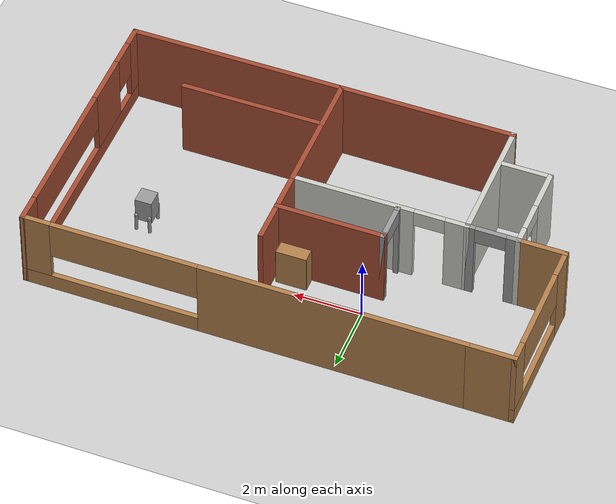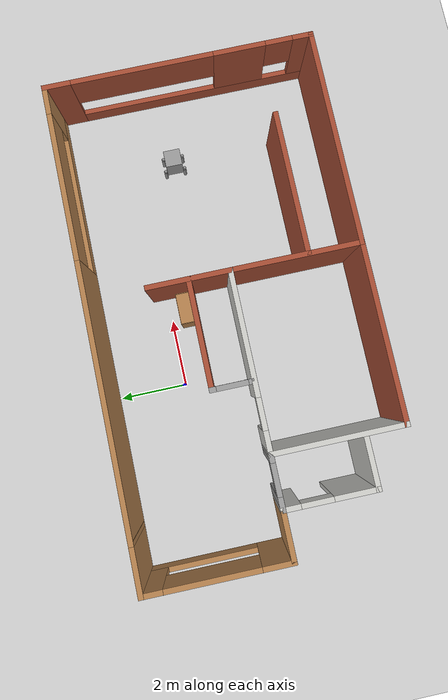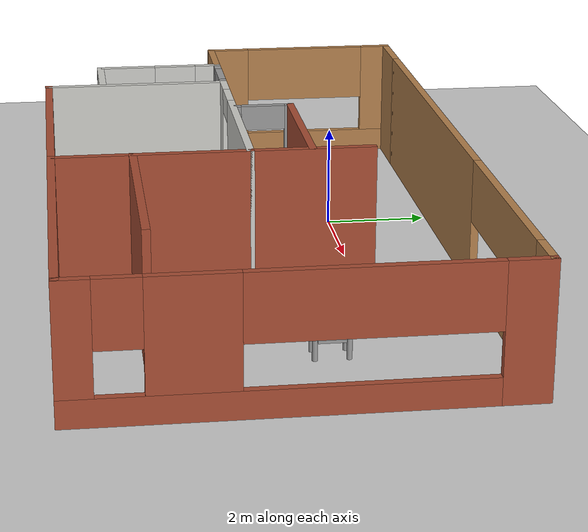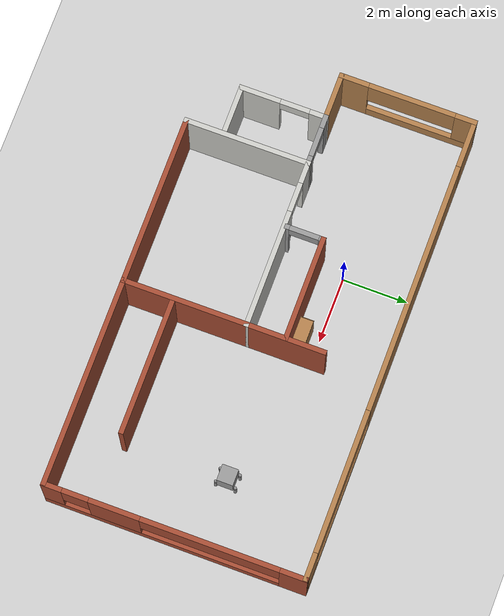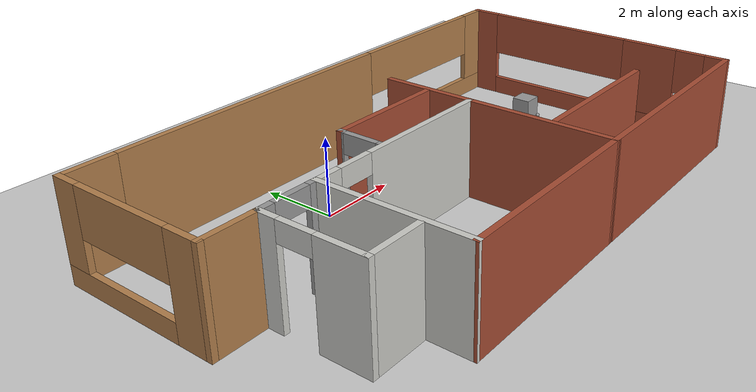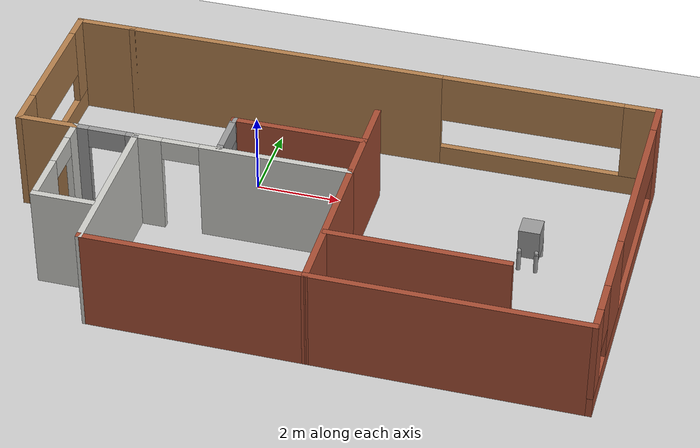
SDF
<sdf version="1.6">
 <world name="default">
  <model name="ground_plane">
   <static>1</static>
   <link name="link">
    <collision name="collision">
     <geometry><plane><normal>0 0 1</normal><size>100 100</size></plane></geometry>
     <surface><friction><ode><mu>100</mu><mu2>50</mu2></ode></friction></surface>
    </collision>
    <visual name="visual">
     <cast_shadows>0</cast_shadows>
     <geometry><plane><normal>0 0 1</normal><size>100 100</size></plane></geometry>
     <material>
      <script><uri>file://media/materials/scripts/gazebo.material</uri><name>Gazebo/Grey</name></script>
     </material>
    </visual>
   </link>
  </model>
  <model name="myplace">
   <pose>1.99043 -1.78813 0 0 -0 0</pose>
   <link name="Wall_56">
    <pose>-5.02365 -0.175493 0 0 -0 3.14159</pose>
    <visual name="Wall_56_Visual_0">
     <pose>-0.660344 0 1.25 0 -0 0</pose>
     <geometry><box><size>0.30723 0.15 2.5</size></box></geometry>
     <material>
      <script><uri>file://media/materials/scripts/gazebo.material</uri><name>Gazebo/Grey</name></script>
      <ambient>1 1 1 1</ambient>
     </material>
     <meta><layer>0</layer></meta>
    </visual>
    <collision name="Wall_56_Collision_0">
     <geometry><box><size>0.30723 0.15 2.5</size></box></geometry>
     <pose>-0.660344 0 1.25 0 -0 0</pose>
    </collision>
    <visual name="Wall_56_Visual_1">
     <pose>0.603615 0 1.25 0 -0 0</pose>
     <geometry><box><size>0.420688 0.15 2.5</size></box></geometry>
     <material>
      <script><uri>file://media/materials/scripts/gazebo.material</uri><name>Gazebo/Grey</name></script>
      <ambient>1 1 1 1</ambient>
     </material>
     <meta><layer>0</layer></meta>
    </visual>
    <collision name="Wall_56_Collision_1">
     <geometry><box><size>0.420688 0.15 2.5</size></box></geometry>
     <pose>0.603615 0 1.25 0 -0 0</pose>
    </collision>
    <visual name="Wall_56_Visual_2">
     <pose>-0.056729 0 2.25 0 -0 0</pose>
     <geometry><box><size>0.9 0.15 0.5</size></box></geometry>
     <material>
      <script><uri>file://media/materials/scripts/gazebo.material</uri><name>Gazebo/Grey</name></script>
      <ambient>1 1 1 1</ambient>
     </material>
     <meta><layer>0</layer></meta>
    </visual>
    <collision name="Wall_56_Collision_2">
     <geometry><box><size>0.9 0.15 0.5</size></box></geometry>
     <pose>-0.056729 0 2.25 0 -0 0</pose>
    </collision>
   </link>
   <link name="Wall_58">
    <pose>0.66434 3.92507 0 0 -0 8.8e-05</pose>
    <visual name="Wall_58_Visual_0">
     <pose>-2.59963 0 1.25 0 -0 0</pose>
     <geometry><box><size>7.80465 0.15 2.5</size></box></geometry>
     <material>
      <script><uri>file://media/materials/scripts/gazebo.material</uri><name>Gazebo/Wood</name></script>
      <ambient>1 1 1 1</ambient>
     </material>
     <meta><layer>0</layer></meta>
    </visual>
    <collision name="Wall_58_Collision_0">
     <geometry><box><size>7.80465 0.15 2.5</size></box></geometry>
     <pose>-2.59963 0 1.25 0 -0 0</pose>
    </collision>
    <visual name="Wall_58_Visual_1">
     <pose>3.90232 0 0.25 0 -0 0</pose>
     <geometry><box><size>5.19925 0.15 0.5</size></box></geometry>
     <material>
      <script><uri>file://media/materials/scripts/gazebo.material</uri><name>Gazebo/Wood</name></script>
      <ambient>1 1 1 1</ambient>
     </material>
     <meta><layer>0</layer></meta>
    </visual>
    <collision name="Wall_58_Collision_1">
     <geometry><box><size>5.19925 0.15 0.5</size></box></geometry>
     <pose>3.90232 0 0.25 0 -0 0</pose>
    </collision>
    <visual name="Wall_58_Visual_2">
     <pose>6.07184 0 1.5 0 -0 0</pose>
     <geometry><box><size>0.860213 0.15 2</size></box></geometry>
     <material>
      <script><uri>file://media/materials/scripts/gazebo.material</uri><name>Gazebo/Wood</name></script>
      <ambient>1 1 1 1</ambient>
     </material>
     <meta><layer>0</layer></meta>
    </visual>
    <collision name="Wall_58_Collision_2">
     <geometry><box><size>0.860213 0.15 2</size></box></geometry>
     <pose>6.07184 0 1.5 0 -0 0</pose>
    </collision>
    <visual name="Wall_58_Visual_3">
     <pose>3.47222 0 1.9 0 -0 0</pose>
     <geometry><box><size>4.33904 0.15 1.2</size></box></geometry>
     <material>
      <script><uri>file://media/materials/scripts/gazebo.material</uri><name>Gazebo/Wood</name></script>
      <ambient>1 1 1 1</ambient>
     </material>
     <meta><layer>0</layer></meta>
    </visual>
    <collision name="Wall_58_Collision_3">
     <geometry><box><size>4.33904 0.15 1.2</size></box></geometry>
     <pose>3.47222 0 1.9 0 -0 0</pose>
    </collision>
   </link>
   <link name="Wall_59">
    <pose>7.11261 0.000633 0 0 0 -1.5708</pose>
    <visual name="Wall_59_Visual_0">
     <pose>-3.58058 0 1.25 0 -0 0</pose>
     <geometry><box><size>0.838846 0.15 2.5</size></box></geometry>
     <material>
      <script><uri>file://media/materials/scripts/gazebo.material</uri><name>Gazebo/Bricks</name></script>
      <ambient>1 1 1 1</ambient>
     </material>
     <meta><layer>0</layer></meta>
    </visual>
    <collision name="Wall_59_Collision_0">
     <geometry><box><size>0.838846 0.15 2.5</size></box></geometry>
     <pose>-3.58058 0 1.25 0 -0 0</pose>
    </collision>
    <visual name="Wall_59_Visual_1">
     <pose>0.419423 0 0.25 0 -0 0</pose>
     <geometry><box><size>7.16115 0.15 0.5</size></box></geometry>
     <material>
      <script><uri>file://media/materials/scripts/gazebo.material</uri><name>Gazebo/Bricks</name></script>
      <ambient>1 1 1 1</ambient>
     </material>
     <meta><layer>0</layer></meta>
    </visual>
    <collision name="Wall_59_Collision_1">
     <geometry><box><size>7.16115 0.15 0.5</size></box></geometry>
     <pose>0.419423 0 0.25 0 -0 0</pose>
    </collision>
    <visual name="Wall_59_Visual_2">
     <pose>1.80126 0 1.5 0 -0 0</pose>
     <geometry><box><size>1.54516 0.15 2</size></box></geometry>
     <material>
      <script><uri>file://media/materials/scripts/gazebo.material</uri><name>Gazebo/Bricks</name></script>
      <ambient>1 1 1 1</ambient>
     </material>
     <meta><layer>0</layer></meta>
    </visual>
    <collision name="Wall_59_Collision_2">
     <geometry><box><size>1.54516 0.15 2</size></box></geometry>
     <pose>1.80126 0 1.5 0 -0 0</pose>
    </collision>
    <visual name="Wall_59_Visual_3">
     <pose>3.68692 0 1.5 0 -0 0</pose>
     <geometry><box><size>0.62616 0.15 2</size></box></geometry>
     <material>
      <script><uri>file://media/materials/scripts/gazebo.material</uri><name>Gazebo/Bricks</name></script>
      <ambient>1 1 1 1</ambient>
     </material>
     <meta><layer>0</layer></meta>
    </visual>
    <collision name="Wall_59_Collision_3">
     <geometry><box><size>0.62616 0.15 2</size></box></geometry>
     <pose>3.68692 0 1.5 0 -0 0</pose>
    </collision>
    <visual name="Wall_59_Visual_4">
     <pose>-1.06624 0 1.9 0 -0 0</pose>
     <geometry><box><size>4.18983 0.15 1.2</size></box></geometry>
     <material>
      <script><uri>file://media/materials/scripts/gazebo.material</uri><name>Gazebo/Bricks</name></script>
      <ambient>1 1 1 1</ambient>
     </material>
     <meta><layer>0</layer></meta>
    </visual>
    <collision name="Wall_59_Collision_4">
     <geometry><box><size>4.18983 0.15 1.2</size></box></geometry>
     <pose>-1.06624 0 1.9 0 -0 0</pose>
    </collision>
    <visual name="Wall_59_Visual_5">
     <pose>2.97384 0 1.9 0 -0 0</pose>
     <geometry><box><size>0.8 0.15 1.2</size></box></geometry>
     <material>
      <script><uri>file://media/materials/scripts/gazebo.material</uri><name>Gazebo/Bricks</name></script>
      <ambient>1 1 1 1</ambient>
     </material>
     <meta><layer>0</layer></meta>
    </visual>
    <collision name="Wall_59_Collision_5">
     <geometry><box><size>0.8 0.15 1.2</size></box></geometry>
     <pose>2.97384 0 1.9 0 -0 0</pose>
    </collision>
   </link>
   <link name="Wall_60">
    <collision name="Wall_60_Collision">
     <geometry><box><size>6.41862 0.15 2.5</size></box></geometry>
     <pose>0 0 1.25 0 -0 0</pose>
    </collision>
    <visual name="Wall_60_Visual">
     <pose>0 0 1.25 0 -0 0</pose>
     <geometry><box><size>6.41862 0.15 2.5</size></box></geometry>
     <material>
      <script><uri>file://media/materials/scripts/gazebo.material</uri><name>Gazebo/Bricks</name></script>
      <ambient>1 1 1 1</ambient>
     </material>
     <meta><layer>0</layer></meta>
    </visual>
    <pose>3.95698 -3.92493 0 0 0 -3.14141</pose>
   </link>
   <link name="Wall_69">
    <pose>-1.73469 -0.175493 0 0 -0 0</pose>
    <visual name="Wall_69_Visual_0">
     <pose>-2.26885 0 1.25 0 -0 0</pose>
     <geometry><box><size>0.712304 0.15 2.5</size></box></geometry>
     <material>
      <script><uri>file://media/materials/scripts/gazebo.material</uri><name>Gazebo/CeilingTiled</name></script>
      <ambient>1 1 1 1</ambient>
     </material>
     <meta><layer>0</layer></meta>
    </visual>
    <collision name="Wall_69_Collision_0">
     <geometry><box><size>0.712304 0.15 2.5</size></box></geometry>
     <pose>-2.26885 0 1.25 0 -0 0</pose>
    </collision>
    <visual name="Wall_69_Visual_1">
     <pose>0.806152 0 1.25 0 -0 0</pose>
     <geometry><box><size>3.6377 0.15 2.5</size></box></geometry>
     <material>
      <script><uri>file://media/materials/scripts/gazebo.material</uri><name>Gazebo/CeilingTiled</name></script>
      <ambient>1 1 1 1</ambient>
     </material>
     <meta><layer>0</layer></meta>
    </visual>
    <collision name="Wall_69_Collision_1">
     <geometry><box><size>3.6377 0.15 2.5</size></box></geometry>
     <pose>0.806152 0 1.25 0 -0 0</pose>
    </collision>
    <visual name="Wall_69_Visual_2">
     <pose>-1.4627 0 2.25 0 -0 0</pose>
     <geometry><box><size>0.9 0.15 0.5</size></box></geometry>
     <material>
      <script><uri>file://media/materials/scripts/gazebo.material</uri><name>Gazebo/CeilingTiled</name></script>
      <ambient>1 1 1 1</ambient>
     </material>
     <meta><layer>0</layer></meta>
    </visual>
    <collision name="Wall_69_Collision_2">
     <geometry><box><size>0.9 0.15 0.5</size></box></geometry>
     <pose>-1.4627 0 2.25 0 -0 0</pose>
    </collision>
   </link>
   <link name="Wall_72">
    <collision name="Wall_72_Collision">
     <geometry><box><size>3.90001 0.15 2.5</size></box></geometry>
     <pose>0 0 1.25 0 -0 0</pose>
    </collision>
    <visual name="Wall_72_Visual">
     <pose>0 0 1.25 0 -0 0</pose>
     <geometry><box><size>3.90001 0.15 2.5</size></box></geometry>
     <material>
      <script><uri>file://media/materials/scripts/gazebo.material</uri><name>Gazebo/Bricks</name></script>
      <ambient>1 1 1 1</ambient>
     </material>
     <meta><layer>0</layer></meta>
    </visual>
    <pose>0.818989 -2.05049 0 0 0 -1.56883</pose>
   </link>
   <link name="Wall_74">
    <collision name="Wall_74_Collision">
     <geometry><box><size>5.25 0.15 2.5</size></box></geometry>
     <pose>0 0 1.25 0 -0 0</pose>
    </collision>
    <visual name="Wall_74_Visual">
     <pose>0 0 1.25 0 -0 0</pose>
     <geometry><box><size>5.25 0.15 2.5</size></box></geometry>
     <material>
      <script><uri>file://media/materials/scripts/gazebo.material</uri><name>Gazebo/Bricks</name></script>
      <ambient>1 1 1 1</ambient>
     </material>
     <meta><layer>0</layer></meta>
    </visual>
    <pose>-1.72733 -3.92549 0 0 -0 3.14159</pose>
   </link>
   <link name="Wall_75">
    <collision name="Wall_75_Collision">
     <geometry><box><size>3.90001 0.15 2.5</size></box></geometry>
     <pose>0 0 1.25 0 -0 0</pose>
    </collision>
    <visual name="Wall_75_Visual">
     <pose>0 0 1.25 0 -0 0</pose>
     <geometry><box><size>3.90001 0.15 2.5</size></box></geometry>
     <material>
      <script><uri>file://media/materials/scripts/gazebo.material</uri><name>Gazebo/CeilingTiled</name></script>
      <ambient>1 1 1 1</ambient>
     </material>
     <meta><layer>0</layer></meta>
    </visual>
    <pose>-4.28101 -2.05049 0 0 -0 1.57276</pose>
   </link>
   <link name="Wall_79">
    <collision name="Wall_79_Collision">
     <geometry><box><size>2.5 0.15 2.5</size></box></geometry>
     <pose>0 0 1.25 0 -0 0</pose>
    </collision>
    <visual name="Wall_79_Visual">
     <pose>0 0 1.25 0 -0 0</pose>
     <geometry><box><size>2.5 0.15 2.5</size></box></geometry>
     <material>
      <script><uri>file://media/materials/scripts/gazebo.material</uri><name>Gazebo/Bricks</name></script>
      <ambient>1 1 1 1</ambient>
     </material>
     <meta><layer>0</layer></meta>
    </visual>
    <pose>0.815308 0.999507 0 0 -0 1.5708</pose>
   </link>
   <link name="Wall_81">
    <collision name="Wall_81_Collision">
     <geometry><box><size>4.25 0.15 2.5</size></box></geometry>
     <pose>0 0 1.25 0 -0 0</pose>
    </collision>
    <visual name="Wall_81_Visual">
     <pose>0 0 1.25 0 -0 0</pose>
     <geometry><box><size>4.25 0.15 2.5</size></box></geometry>
     <material>
      <script><uri>file://media/materials/scripts/gazebo.material</uri><name>Gazebo/Bricks</name></script>
      <ambient>1 1 1 1</ambient>
     </material>
     <meta><layer>0</layer></meta>
    </visual>
    <pose>2.90335 -2.39757 0 0 -0 0</pose>
   </link>
   <link name="Wall_83">
    <collision name="Wall_83_Collision">
     <geometry><box><size>3.25 0.15 2.5</size></box></geometry>
     <pose>0 0 1.25 0 -0 0</pose>
    </collision>
    <visual name="Wall_83_Visual">
     <pose>0 0 1.25 0 -0 0</pose>
     <geometry><box><size>3.25 0.15 2.5</size></box></geometry>
     <material>
      <script><uri>file://media/materials/scripts/gazebo.material</uri><name>Gazebo/Bricks</name></script>
      <ambient>1 1 1 1</ambient>
     </material>
     <meta><layer>0</layer></meta>
    </visual>
    <pose>-0.739288 1.01357 0 0 -0 3.14159</pose>
   </link>
   <link name="Wall_84">
    <pose>-2.28929 0.463574 0 0 0 -1.5708</pose>
    <visual name="Wall_84_Visual_0">
     <pose>-0.524684 0 1.25 0 -0 0</pose>
     <geometry><box><size>0.200631 0.15 2.5</size></box></geometry>
     <material>
      <script><uri>file://media/materials/scripts/gazebo.material</uri><name>Gazebo/Grey</name></script>
      <ambient>1 1 1 1</ambient>
     </material>
     <meta><layer>0</layer></meta>
    </visual>
    <collision name="Wall_84_Collision_0">
     <geometry><box><size>0.200631 0.15 2.5</size></box></geometry>
     <pose>-0.524684 0 1.25 0 -0 0</pose>
    </collision>
    <visual name="Wall_84_Visual_1">
     <pose>0.550316 0 1.25 0 -0 0</pose>
     <geometry><box><size>0.149369 0.15 2.5</size></box></geometry>
     <material>
      <script><uri>file://media/materials/scripts/gazebo.material</uri><name>Gazebo/Grey</name></script>
      <ambient>1 1 1 1</ambient>
     </material>
     <meta><layer>0</layer></meta>
    </visual>
    <collision name="Wall_84_Collision_1">
     <geometry><box><size>0.149369 0.15 2.5</size></box></geometry>
     <pose>0.550316 0 1.25 0 -0 0</pose>
    </collision>
    <visual name="Wall_84_Visual_2">
     <pose>0.025631 0 2.25 0 -0 0</pose>
     <geometry><box><size>0.9 0.15 0.5</size></box></geometry>
     <material>
      <script><uri>file://media/materials/scripts/gazebo.material</uri><name>Gazebo/Grey</name></script>
      <ambient>1 1 1 1</ambient>
     </material>
     <meta><layer>0</layer></meta>
    </visual>
    <collision name="Wall_84_Collision_2">
     <geometry><box><size>0.9 0.15 0.5</size></box></geometry>
     <pose>0.025631 0 2.25 0 -0 0</pose>
    </collision>
   </link>
   <link name="Wall_86">
    <pose>-5.76261 -1.47549 0 0 0 -1.5708</pose>
    <visual name="Wall_86_Visual_0">
     <pose>-1.09105 0 1.25 0 -0 0</pose>
     <geometry><box><size>0.567901 0.15 2.5</size></box></geometry>
     <material>
      <script><uri>file://media/materials/scripts/gazebo.material</uri><name>Gazebo/CeilingTiled</name></script>
      <ambient>1 1 1 1</ambient>
     </material>
     <meta><layer>0</layer></meta>
    </visual>
    <collision name="Wall_86_Collision_0">
     <geometry><box><size>0.567901 0.15 2.5</size></box></geometry>
     <pose>-1.09105 0 1.25 0 -0 0</pose>
    </collision>
    <visual name="Wall_86_Visual_1">
     <pose>0.73395 0 1.25 0 -0 0</pose>
     <geometry><box><size>1.2821 0.15 2.5</size></box></geometry>
     <material>
      <script><uri>file://media/materials/scripts/gazebo.material</uri><name>Gazebo/CeilingTiled</name></script>
      <ambient>1 1 1 1</ambient>
     </material>
     <meta><layer>0</layer></meta>
    </visual>
    <collision name="Wall_86_Collision_1">
     <geometry><box><size>1.2821 0.15 2.5</size></box></geometry>
     <pose>0.73395 0 1.25 0 -0 0</pose>
    </collision>
    <visual name="Wall_86_Visual_2">
     <pose>-0.357099 0 2.25 0 -0 0</pose>
     <geometry><box><size>0.9 0.15 0.5</size></box></geometry>
     <material>
      <script><uri>file://media/materials/scripts/gazebo.material</uri><name>Gazebo/CeilingTiled</name></script>
      <ambient>1 1 1 1</ambient>
     </material>
     <meta><layer>0</layer></meta>
    </visual>
    <collision name="Wall_86_Collision_2">
     <geometry><box><size>0.9 0.15 0.5</size></box></geometry>
     <pose>-0.357099 0 2.25 0 -0 0</pose>
    </collision>
   </link>
   <link name="Wall_87">
    <collision name="Wall_87_Collision">
     <geometry><box><size>1.5 0.15 2.5</size></box></geometry>
     <pose>0 0 1.25 0 -0 0</pose>
    </collision>
    <visual name="Wall_87_Visual">
     <pose>0 0 1.25 0 -0 0</pose>
     <geometry><box><size>1.5 0.15 2.5</size></box></geometry>
     <material>
      <script><uri>file://media/materials/scripts/gazebo.material</uri><name>Gazebo/CeilingTiled</name></script>
      <ambient>1 1 1 1</ambient>
     </material>
     <meta><layer>0</layer></meta>
    </visual>
    <pose>-5.08761 -2.77549 0 0 -0 0</pose>
   </link>
   <link name="Wall_89">
    <collision name="Wall_89_Collision">
     <geometry><box><size>1.5 0.15 2.5</size></box></geometry>
     <pose>0 0 1.25 0 -0 0</pose>
    </collision>
    <visual name="Wall_89_Visual">
     <pose>0 0 1.25 0 -0 0</pose>
     <geometry><box><size>1.5 0.15 2.5</size></box></geometry>
     <material>
      <script><uri>file://media/materials/scripts/gazebo.material</uri><name>Gazebo/Wood</name></script>
      <ambient>1 1 1 1</ambient>
     </material>
     <meta><layer>0</layer></meta>
    </visual>
    <pose>-6.43761 -0.175493 0 0 -0 3.14159</pose>
   </link>
   <link name="Wall_90">
    <pose>-7.11261 1.87451 0 0 -0 1.5708</pose>
    <visual name="Wall_90_Visual_0">
     <pose>-1.66099 0 1.25 0 -0 0</pose>
     <geometry><box><size>0.928026 0.15 2.5</size></box></geometry>
     <material>
      <script><uri>file://media/materials/scripts/gazebo.material</uri><name>Gazebo/Wood</name></script>
      <ambient>1 1 1 1</ambient>
     </material>
     <meta><layer>0</layer></meta>
    </visual>
    <collision name="Wall_90_Collision_0">
     <geometry><box><size>0.928026 0.15 2.5</size></box></geometry>
     <pose>-1.66099 0 1.25 0 -0 0</pose>
    </collision>
    <visual name="Wall_90_Visual_1">
     <pose>0.464013 0 0.25 0 -0 0</pose>
     <geometry><box><size>3.32197 0.15 0.5</size></box></geometry>
     <material>
      <script><uri>file://media/materials/scripts/gazebo.material</uri><name>Gazebo/Wood</name></script>
      <ambient>1 1 1 1</ambient>
     </material>
     <meta><layer>0</layer></meta>
    </visual>
    <collision name="Wall_90_Collision_1">
     <geometry><box><size>3.32197 0.15 0.5</size></box></geometry>
     <pose>0.464013 0 0.25 0 -0 0</pose>
    </collision>
    <visual name="Wall_90_Visual_2">
     <pose>1.79142 0 1.5 0 -0 0</pose>
     <geometry><box><size>0.667162 0.15 2</size></box></geometry>
     <material>
      <script><uri>file://media/materials/scripts/gazebo.material</uri><name>Gazebo/Wood</name></script>
      <ambient>1 1 1 1</ambient>
     </material>
     <meta><layer>0</layer></meta>
    </visual>
    <collision name="Wall_90_Collision_2">
     <geometry><box><size>0.667162 0.15 2</size></box></geometry>
     <pose>1.79142 0 1.5 0 -0 0</pose>
    </collision>
    <visual name="Wall_90_Visual_3">
     <pose>0.130432 0 1.9 0 -0 0</pose>
     <geometry><box><size>2.65481 0.15 1.2</size></box></geometry>
     <material>
      <script><uri>file://media/materials/scripts/gazebo.material</uri><name>Gazebo/Wood</name></script>
      <ambient>1 1 1 1</ambient>
     </material>
     <meta><layer>0</layer></meta>
    </visual>
    <collision name="Wall_90_Collision_3">
     <geometry><box><size>2.65481 0.15 1.2</size></box></geometry>
     <pose>0.130432 0 1.9 0 -0 0</pose>
    </collision>
   </link>
   <link name="Wall_91">
    <collision name="Wall_91_Collision">
     <geometry><box><size>1.5 0.15 2.5</size></box></geometry>
     <pose>0 0 1.25 0 -0 0</pose>
    </collision>
    <visual name="Wall_91_Visual">
     <pose>0 0 1.25 0 -0 0</pose>
     <geometry><box><size>1.5 0.15 2.5</size></box></geometry>
     <material>
      <script><uri>file://media/materials/scripts/gazebo.material</uri><name>Gazebo/Wood</name></script>
      <ambient>1 1 1 1</ambient>
     </material>
     <meta><layer>0</layer></meta>
    </visual>
    <pose>-6.43761 3.92451 0 0 -0 0</pose>
   </link>
   <static>1</static>
  </model>
  <model name="bookshelf">
   <static>1</static>
   <link name="link">
    <inertial><mass>1</mass></inertial>
    <collision name="back">
     <pose>0 0.005 0.6 0 -0 0</pose>
     <geometry><box><size>0.9 0.01 1.2</size></box></geometry>
    </collision>
    <visual name="visual1">
     <pose>0 0.005 0.6 0 -0 0</pose>
     <geometry><box><size>0.9 0.01 1.2</size></box></geometry>
     <material>
      <script><uri>file://media/materials/scripts/gazebo.material</uri><name>Gazebo/Wood</name></script>
     </material>
    </visual>
    <collision name="left_side">
     <pose>0.45 -0.195 0.6 0 -0 0</pose>
     <geometry><box><size>0.02 0.4 1.2</size></box></geometry>
    </collision>
    <visual name="visual2">
     <pose>0.45 -0.195 0.6 0 -0 0</pose>
     <geometry><box><size>0.02 0.4 1.2</size></box></geometry>
     <material>
      <script><uri>file://media/materials/scripts/gazebo.material</uri><name>Gazebo/Wood</name></script>
     </material>
    </visual>
    <collision name="right_side">
     <pose>-0.45 -0.195 0.6 0 -0 0</pose>
     <geometry><box><size>0.02 0.4 1.2</size></box></geometry>
    </collision>
    <visual name="visual3">
     <pose>-0.45 -0.195 0.6 0 -0 0</pose>
     <geometry><box><size>0.02 0.4 1.2</size></box></geometry>
     <material>
      <script><uri>file://media/materials/scripts/gazebo.material</uri><name>Gazebo/Wood</name></script>
     </material>
    </visual>
    <collision name="bottom">
     <pose>0 -0.195 0.03 0 -0 0</pose>
     <geometry><box><size>0.88 0.4 0.06</size></box></geometry>
    </collision>
    <visual name="visual4">
     <pose>0 -0.195 0.03 0 -0 0</pose>
     <geometry><box><size>0.88 0.4 0.06</size></box></geometry>
     <material>
      <script><uri>file://media/materials/scripts/gazebo.material</uri><name>Gazebo/Wood</name></script>
     </material>
    </visual>
    <collision name="top">
     <pose>0 -0.195 1.19 0 -0 0</pose>
     <geometry><box><size>0.88 0.4 0.02</size></box></geometry>
    </collision>
    <visual name="visual5">
     <pose>0 -0.195 1.19 0 -0 0</pose>
     <geometry><box><size>0.88 0.4 0.02</size></box></geometry>
     <material>
      <script><uri>file://media/materials/scripts/gazebo.material</uri><name>Gazebo/Wood</name></script>
     </material>
    </visual>
    <collision name="low_shelf">
     <pose>0 -0.195 0.43 0 -0 0</pose>
     <geometry><box><size>0.88 0.4 0.02</size></box></geometry>
    </collision>
    <visual name="visual6">
     <pose>0 -0.195 0.43 0 -0 0</pose>
     <geometry><box><size>0.88 0.4 0.02</size></box></geometry>
     <material>
      <script><uri>file://media/materials/scripts/gazebo.material</uri><name>Gazebo/Wood</name></script>
     </material>
    </visual>
    <collision name="high_shelf">
     <pose>0 -0.195 0.8 0 -0 0</pose>
     <geometry><box><size>0.88 0.4 0.02</size></box></geometry>
    </collision>
    <visual name="visual7">
     <pose>0 -0.195 0.8 0 -0 0</pose>
     <geometry><box><size>0.88 0.4 0.02</size></box></geometry>
     <material>
      <script><uri>file://media/materials/scripts/gazebo.material</uri><name>Gazebo/Wood</name></script>
     </material>
    </visual>
   </link>
   <pose>2.20301 -0.290207 0 0 -0 0</pose>
  </model>
  <model name="myhumanoid">
   <link name="link_0">
    <pose>5.60089 -1.84381 0.544444 0 -0 0</pose>
    <inertial>
     <mass>1</mass>
     <inertia>
      <ixx>0.166667</ixx>
      <ixy>0</ixy>
      <ixz>0</ixz>
      <iyy>0.166667</iyy>
      <iyz>0</iyz>
      <izz>0.166667</izz>
     </inertia>
     <pose>0 0 0.25 0 -0 0</pose>
    </inertial>
    <visual name="visual">
     <pose>0 0 0.25 0 -0 0</pose>
     <geometry><box><size>0.5 0.5 0.75</size></box></geometry>
     <material>
      <lighting>1</lighting>
      <script><uri>file://media/materials/scripts/gazebo.material</uri><name>Gazebo/Grey</name></script>
      <ambient>0.3 0.3 0.3 1</ambient>
      <diffuse>0.7 0.7 0.7 1</diffuse>
      <specular>0.01 0.01 0.01 1</specular>
      <emissive>0 0 0 1</emissive>
      <shader type="vertex"><normal_map>__default__</normal_map></shader>
     </material>
    </visual>
    <collision name="collision">
     <pose>0 0 0.25 0 -0 0</pose>
     <geometry><box><size>0.5 0.5 0.75</size></box></geometry>
     <surface>
      <friction>
       <ode><mu>1</mu><mu2>1</mu2><fdir1>0 0 0</fdir1><slip1>0</slip1><slip2>0</slip2></ode>
       <torsional>
        <coefficient>1</coefficient>
        <patch_radius>0</patch_radius>
        <surface_radius>0</surface_radius>
        <use_patch_radius>1</use_patch_radius>
        <ode><slip>0</slip></ode>
       </torsional>
      </friction>
      <bounce><restitution_coefficient>0</restitution_coefficient><threshold>1e+06</threshold></bounce>
      <contact>
       <collide_without_contact>0</collide_without_contact>
       <collide_without_contact_bitmask>1</collide_without_contact_bitmask>
       <collide_bitmask>1</collide_bitmask>
       <ode>
        <soft_cfm>0</soft_cfm>
        <soft_erp>0.2</soft_erp>
        <kp>1e+13</kp>
        <kd>1</kd>
        <max_vel>0.01</max_vel>
        <min_depth>0</min_depth>
       </ode>
       <bullet>
        <split_impulse>1</split_impulse>
        <split_impulse_penetration_threshold>-0.01</split_impulse_penetration_threshold>
        <soft_cfm>0</soft_cfm>
        <soft_erp>0.2</soft_erp>
        <kp>1e+13</kp>
        <kd>1</kd>
       </bullet>
      </contact>
     </surface>
    </collision>
   </link>
   <link name="link_1_clone">
    <pose>5.40089 -1.54381 0.644444 0 -0 0</pose>
    <inertial>
     <mass>1</mass>
     <inertia><ixx>0.1</ixx><ixy>0</ixy><ixz>0</ixz><iyy>0.1</iyy><iyz>0</iyz><izz>0.1</izz></inertia>
    </inertial>
    <visual name="visual">
     <geometry><sphere><radius>0.05</radius></sphere></geometry>
     <material>
      <lighting>1</lighting>
      <script><uri>file://media/materials/scripts/gazebo.material</uri><name>Gazebo/Grey</name></script>
      <ambient>0.3 0.3 0.3 1</ambient>
      <diffuse>0.7 0.7 0.7 1</diffuse>
      <specular>0.01 0.01 0.01 1</specular>
      <emissive>0 0 0 1</emissive>
      <shader type="vertex"><normal_map>__default__</normal_map></shader>
     </material>
    </visual>
    <collision name="collision">
     <geometry><sphere><radius>0.05</radius></sphere></geometry>
     <surface>
      <friction>
       <ode><mu>1</mu><mu2>1</mu2><fdir1>0 0 0</fdir1><slip1>0</slip1><slip2>0</slip2></ode>
       <torsional>
        <coefficient>1</coefficient>
        <patch_radius>0</patch_radius>
        <surface_radius>0</surface_radius>
        <use_patch_radius>1</use_patch_radius>
        <ode><slip>0</slip></ode>
       </torsional>
      </friction>
      <bounce><restitution_coefficient>0</restitution_coefficient><threshold>1e+06</threshold></bounce>
      <contact>
       <collide_without_contact>0</collide_without_contact>
       <collide_without_contact_bitmask>1</collide_without_contact_bitmask>
       <collide_bitmask>1</collide_bitmask>
       <ode>
        <soft_cfm>0</soft_cfm>
        <soft_erp>0.2</soft_erp>
        <kp>1e+13</kp>
        <kd>1</kd>
        <max_vel>0.01</max_vel>
        <min_depth>0</min_depth>
       </ode>
       <bullet>
        <split_impulse>1</split_impulse>
        <split_impulse_penetration_threshold>-0.01</split_impulse_penetration_threshold>
        <soft_cfm>0</soft_cfm>
        <soft_erp>0.2</soft_erp>
        <kp>1e+13</kp>
        <kd>1</kd>
       </bullet>
      </contact>
     </surface>
    </collision>
   </link>
   <link name="link_1_clone_clone">
    <pose>5.40089 -2.14381 0.644444 0 -0 0</pose>
    <inertial>
     <mass>1</mass>
     <inertia><ixx>0.1</ixx><ixy>0</ixy><ixz>0</ixz><iyy>0.1</iyy><iyz>0</iyz><izz>0.1</izz></inertia>
    </inertial>
    <visual name="visual">
     <geometry><sphere><radius>0.05</radius></sphere></geometry>
     <material>
      <lighting>1</lighting>
      <script><uri>file://media/materials/scripts/gazebo.material</uri><name>Gazebo/Grey</name></script>
      <ambient>0.3 0.3 0.3 1</ambient>
      <diffuse>0.7 0.7 0.7 1</diffuse>
      <specular>0.01 0.01 0.01 1</specular>
      <emissive>0 0 0 1</emissive>
      <shader type="vertex"><normal_map>__default__</normal_map></shader>
     </material>
    </visual>
    <collision name="collision">
     <geometry><sphere><radius>0.05</radius></sphere></geometry>
     <surface>
      <friction>
       <ode><mu>1</mu><mu2>1</mu2><fdir1>0 0 0</fdir1><slip1>0</slip1><slip2>0</slip2></ode>
       <torsional>
        <coefficient>1</coefficient>
        <patch_radius>0</patch_radius>
        <surface_radius>0</surface_radius>
        <use_patch_radius>1</use_patch_radius>
        <ode><slip>0</slip></ode>
       </torsional>
      </friction>
      <bounce><restitution_coefficient>0</restitution_coefficient><threshold>1e+06</threshold></bounce>
      <contact>
       <collide_without_contact>0</collide_without_contact>
       <collide_without_contact_bitmask>1</collide_without_contact_bitmask>
       <collide_bitmask>1</collide_bitmask>
       <ode>
        <soft_cfm>0</soft_cfm>
        <soft_erp>0.2</soft_erp>
        <kp>1e+13</kp>
        <kd>1</kd>
        <max_vel>0.01</max_vel>
        <min_depth>0</min_depth>
       </ode>
       <bullet>
        <split_impulse>1</split_impulse>
        <split_impulse_penetration_threshold>-0.01</split_impulse_penetration_threshold>
        <soft_cfm>0</soft_cfm>
        <soft_erp>0.2</soft_erp>
        <kp>1e+13</kp>
        <kd>1</kd>
       </bullet>
      </contact>
     </surface>
    </collision>
   </link>
   <link name="link_1_clone_clone_0">
    <pose>5.80089 -2.14381 0.644444 0 -0 0</pose>
    <inertial>
     <mass>1</mass>
     <inertia><ixx>0.1</ixx><ixy>0</ixy><ixz>0</ixz><iyy>0.1</iyy><iyz>0</iyz><izz>0.1</izz></inertia>
    </inertial>
    <visual name="visual">
     <geometry><sphere><radius>0.05</radius></sphere></geometry>
     <material>
      <lighting>1</lighting>
      <script><uri>file://media/materials/scripts/gazebo.material</uri><name>Gazebo/Grey</name></script>
      <ambient>0.3 0.3 0.3 1</ambient>
      <diffuse>0.7 0.7 0.7 1</diffuse>
      <specular>0.01 0.01 0.01 1</specular>
      <emissive>0 0 0 1</emissive>
      <shader type="vertex"><normal_map>__default__</normal_map></shader>
     </material>
    </visual>
    <collision name="collision">
     <geometry><sphere><radius>0.05</radius></sphere></geometry>
     <surface>
      <friction>
       <ode><mu>1</mu><mu2>1</mu2><fdir1>0 0 0</fdir1><slip1>0</slip1><slip2>0</slip2></ode>
       <torsional>
        <coefficient>1</coefficient>
        <patch_radius>0</patch_radius>
        <surface_radius>0</surface_radius>
        <use_patch_radius>1</use_patch_radius>
        <ode><slip>0</slip></ode>
       </torsional>
      </friction>
      <bounce><restitution_coefficient>0</restitution_coefficient><threshold>1e+06</threshold></bounce>
      <contact>
       <collide_without_contact>0</collide_without_contact>
       <collide_without_contact_bitmask>1</collide_without_contact_bitmask>
       <collide_bitmask>1</collide_bitmask>
       <ode>
        <soft_cfm>0</soft_cfm>
        <soft_erp>0.2</soft_erp>
        <kp>1e+13</kp>
        <kd>1</kd>
        <max_vel>0.01</max_vel>
        <min_depth>0</min_depth>
       </ode>
       <bullet>
        <split_impulse>1</split_impulse>
        <split_impulse_penetration_threshold>-0.01</split_impulse_penetration_threshold>
        <soft_cfm>0</soft_cfm>
        <soft_erp>0.2</soft_erp>
        <kp>1e+13</kp>
        <kd>1</kd>
       </bullet>
      </contact>
     </surface>
    </collision>
   </link>
   <link name="link_1_clone_clone_1">
    <pose>5.80089 -1.54381 0.644444 0 -0 0</pose>
    <inertial>
     <mass>1</mass>
     <inertia><ixx>0.1</ixx><ixy>0</ixy><ixz>0</ixz><iyy>0.1</iyy><iyz>0</iyz><izz>0.1</izz></inertia>
    </inertial>
    <visual name="visual">
     <geometry><sphere><radius>0.05</radius></sphere></geometry>
     <material>
      <lighting>1</lighting>
      <script><uri>file://media/materials/scripts/gazebo.material</uri><name>Gazebo/Grey</name></script>
      <ambient>0.3 0.3 0.3 1</ambient>
      <diffuse>0.7 0.7 0.7 1</diffuse>
      <specular>0.01 0.01 0.01 1</specular>
      <emissive>0 0 0 1</emissive>
      <shader type="vertex"><normal_map>__default__</normal_map></shader>
     </material>
    </visual>
    <collision name="collision">
     <geometry><sphere><radius>0.05</radius></sphere></geometry>
     <surface>
      <friction>
       <ode><mu>1</mu><mu2>1</mu2><fdir1>0 0 0</fdir1><slip1>0</slip1><slip2>0</slip2></ode>
       <torsional>
        <coefficient>1</coefficient>
        <patch_radius>0</patch_radius>
        <surface_radius>0</surface_radius>
        <use_patch_radius>1</use_patch_radius>
        <ode><slip>0</slip></ode>
       </torsional>
      </friction>
      <bounce><restitution_coefficient>0</restitution_coefficient><threshold>1e+06</threshold></bounce>
      <contact>
       <collide_without_contact>0</collide_without_contact>
       <collide_without_contact_bitmask>1</collide_without_contact_bitmask>
       <collide_bitmask>1</collide_bitmask>
       <ode>
        <soft_cfm>0</soft_cfm>
        <soft_erp>0.2</soft_erp>
        <kp>1e+13</kp>
        <kd>1</kd>
        <max_vel>0.01</max_vel>
        <min_depth>0</min_depth>
       </ode>
       <bullet>
        <split_impulse>1</split_impulse>
        <split_impulse_penetration_threshold>-0.01</split_impulse_penetration_threshold>
        <soft_cfm>0</soft_cfm>
        <soft_erp>0.2</soft_erp>
        <kp>1e+13</kp>
        <kd>1</kd>
       </bullet>
      </contact>
     </surface>
    </collision>
   </link>
   <link name="link_2_clone">
    <pose>5.40089 -1.54381 0.344444 0 -0 0</pose>
    <inertial>
     <mass>1</mass>
     <inertia><ixx>0.145833</ixx><ixy>0</ixy><ixz>0</ixz><iyy>0.145833</iyy><iyz>0</iyz><izz>0.125</izz></inertia>
    </inertial>
    <visual name="visual">
     <geometry><cylinder><radius>0.05</radius><length>0.5</length></cylinder></geometry>
     <material>
      <lighting>1</lighting>
      <script><uri>file://media/materials/scripts/gazebo.material</uri><name>Gazebo/Grey</name></script>
      <ambient>0.3 0.3 0.3 1</ambient>
      <diffuse>0.7 0.7 0.7 1</diffuse>
      <specular>0.01 0.01 0.01 1</specular>
      <emissive>0 0 0 1</emissive>
      <shader type="vertex"><normal_map>__default__</normal_map></shader>
     </material>
    </visual>
    <collision name="collision">
     <geometry><cylinder><radius>0.05</radius><length>0.5</length></cylinder></geometry>
     <surface>
      <friction>
       <ode><mu>1</mu><mu2>1</mu2><fdir1>0 0 0</fdir1><slip1>0</slip1><slip2>0</slip2></ode>
       <torsional>
        <coefficient>1</coefficient>
        <patch_radius>0</patch_radius>
        <surface_radius>0</surface_radius>
        <use_patch_radius>1</use_patch_radius>
        <ode><slip>0</slip></ode>
       </torsional>
      </friction>
      <bounce><restitution_coefficient>0</restitution_coefficient><threshold>1e+06</threshold></bounce>
      <contact>
       <collide_without_contact>0</collide_without_contact>
       <collide_without_contact_bitmask>1</collide_without_contact_bitmask>
       <collide_bitmask>1</collide_bitmask>
       <ode>
        <soft_cfm>0</soft_cfm>
        <soft_erp>0.2</soft_erp>
        <kp>1e+13</kp>
        <kd>1</kd>
        <max_vel>0.01</max_vel>
        <min_depth>0</min_depth>
       </ode>
       <bullet>
        <split_impulse>1</split_impulse>
        <split_impulse_penetration_threshold>-0.01</split_impulse_penetration_threshold>
        <soft_cfm>0</soft_cfm>
        <soft_erp>0.2</soft_erp>
        <kp>1e+13</kp>
        <kd>1</kd>
       </bullet>
      </contact>
     </surface>
    </collision>
   </link>
   <link name="link_2_clone_clone">
    <pose>5.40089 -2.14381 0.344444 0 -0 0</pose>
    <inertial>
     <mass>1</mass>
     <inertia><ixx>0.145833</ixx><ixy>0</ixy><ixz>0</ixz><iyy>0.145833</iyy><iyz>0</iyz><izz>0.125</izz></inertia>
    </inertial>
    <visual name="visual">
     <geometry><cylinder><radius>0.05</radius><length>0.5</length></cylinder></geometry>
     <material>
      <lighting>1</lighting>
      <script><uri>file://media/materials/scripts/gazebo.material</uri><name>Gazebo/Grey</name></script>
      <ambient>0.3 0.3 0.3 1</ambient>
      <diffuse>0.7 0.7 0.7 1</diffuse>
      <specular>0.01 0.01 0.01 1</specular>
      <emissive>0 0 0 1</emissive>
      <shader type="vertex"><normal_map>__default__</normal_map></shader>
     </material>
    </visual>
    <collision name="collision">
     <geometry><cylinder><radius>0.05</radius><length>0.5</length></cylinder></geometry>
     <surface>
      <friction>
       <ode><mu>1</mu><mu2>1</mu2><fdir1>0 0 0</fdir1><slip1>0</slip1><slip2>0</slip2></ode>
       <torsional>
        <coefficient>1</coefficient>
        <patch_radius>0</patch_radius>
        <surface_radius>0</surface_radius>
        <use_patch_radius>1</use_patch_radius>
        <ode><slip>0</slip></ode>
       </torsional>
      </friction>
      <bounce><restitution_coefficient>0</restitution_coefficient><threshold>1e+06</threshold></bounce>
      <contact>
       <collide_without_contact>0</collide_without_contact>
       <collide_without_contact_bitmask>1</collide_without_contact_bitmask>
       <collide_bitmask>1</collide_bitmask>
       <ode>
        <soft_cfm>0</soft_cfm>
        <soft_erp>0.2</soft_erp>
        <kp>1e+13</kp>
        <kd>1</kd>
        <max_vel>0.01</max_vel>
        <min_depth>0</min_depth>
       </ode>
       <bullet>
        <split_impulse>1</split_impulse>
        <split_impulse_penetration_threshold>-0.01</split_impulse_penetration_threshold>
        <soft_cfm>0</soft_cfm>
        <soft_erp>0.2</soft_erp>
        <kp>1e+13</kp>
        <kd>1</kd>
       </bullet>
      </contact>
     </surface>
    </collision>
   </link>
   <link name="link_2_clone_clone_0">
    <pose>5.80089 -2.14381 0.344444 0 -0 0</pose>
    <inertial>
     <mass>1</mass>
     <inertia><ixx>0.145833</ixx><ixy>0</ixy><ixz>0</ixz><iyy>0.145833</iyy><iyz>0</iyz><izz>0.125</izz></inertia>
    </inertial>
    <visual name="visual">
     <geometry><cylinder><radius>0.05</radius><length>0.5</length></cylinder></geometry>
     <material>
      <lighting>1</lighting>
      <script><uri>file://media/materials/scripts/gazebo.material</uri><name>Gazebo/Grey</name></script>
      <ambient>0.3 0.3 0.3 1</ambient>
      <diffuse>0.7 0.7 0.7 1</diffuse>
      <specular>0.01 0.01 0.01 1</specular>
      <emissive>0 0 0 1</emissive>
      <shader type="vertex"><normal_map>__default__</normal_map></shader>
     </material>
    </visual>
    <collision name="collision">
     <geometry><cylinder><radius>0.05</radius><length>0.5</length></cylinder></geometry>
     <surface>
      <friction>
       <ode><mu>1</mu><mu2>1</mu2><fdir1>0 0 0</fdir1><slip1>0</slip1><slip2>0</slip2></ode>
       <torsional>
        <coefficient>1</coefficient>
        <patch_radius>0</patch_radius>
        <surface_radius>0</surface_radius>
        <use_patch_radius>1</use_patch_radius>
        <ode><slip>0</slip></ode>
       </torsional>
      </friction>
      <bounce><restitution_coefficient>0</restitution_coefficient><threshold>1e+06</threshold></bounce>
      <contact>
       <collide_without_contact>0</collide_without_contact>
       <collide_without_contact_bitmask>1</collide_without_contact_bitmask>
       <collide_bitmask>1</collide_bitmask>
       <ode>
        <soft_cfm>0</soft_cfm>
        <soft_erp>0.2</soft_erp>
        <kp>1e+13</kp>
        <kd>1</kd>
        <max_vel>0.01</max_vel>
        <min_depth>0</min_depth>
       </ode>
       <bullet>
        <split_impulse>1</split_impulse>
        <split_impulse_penetration_threshold>-0.01</split_impulse_penetration_threshold>
        <soft_cfm>0</soft_cfm>
        <soft_erp>0.2</soft_erp>
        <kp>1e+13</kp>
        <kd>1</kd>
       </bullet>
      </contact>
     </surface>
    </collision>
   </link>
   <link name="link_2_clone_clone_1">
    <pose>5.80089 -1.54381 0.344444 0 -0 0</pose>
    <inertial>
     <mass>1</mass>
     <inertia><ixx>0.145833</ixx><ixy>0</ixy><ixz>0</ixz><iyy>0.145833</iyy><iyz>0</iyz><izz>0.125</izz></inertia>
    </inertial>
    <visual name="visual">
     <geometry><cylinder><radius>0.05</radius><length>0.5</length></cylinder></geometry>
     <material>
      <lighting>1</lighting>
      <script><uri>file://media/materials/scripts/gazebo.material</uri><name>Gazebo/Grey</name></script>
      <ambient>0.3 0.3 0.3 1</ambient>
      <diffuse>0.7 0.7 0.7 1</diffuse>
      <specular>0.01 0.01 0.01 1</specular>
      <emissive>0 0 0 1</emissive>
      <shader type="vertex"><normal_map>__default__</normal_map></shader>
     </material>
    </visual>
    <collision name="collision">
     <geometry><cylinder><radius>0.05</radius><length>0.5</length></cylinder></geometry>
     <surface>
      <friction>
       <ode><mu>1</mu><mu2>1</mu2><fdir1>0 0 0</fdir1><slip1>0</slip1><slip2>0</slip2></ode>
       <torsional>
        <coefficient>1</coefficient>
        <patch_radius>0</patch_radius>
        <surface_radius>0</surface_radius>
        <use_patch_radius>1</use_patch_radius>
        <ode><slip>0</slip></ode>
       </torsional>
      </friction>
      <bounce><restitution_coefficient>0</restitution_coefficient><threshold>1e+06</threshold></bounce>
      <contact>
       <collide_without_contact>0</collide_without_contact>
       <collide_without_contact_bitmask>1</collide_without_contact_bitmask>
       <collide_bitmask>1</collide_bitmask>
       <ode>
        <soft_cfm>0</soft_cfm>
        <soft_erp>0.2</soft_erp>
        <kp>1e+13</kp>
        <kd>1</kd>
        <max_vel>0.01</max_vel>
        <min_depth>0</min_depth>
       </ode>
       <bullet>
        <split_impulse>1</split_impulse>
        <split_impulse_penetration_threshold>-0.01</split_impulse_penetration_threshold>
        <soft_cfm>0</soft_cfm>
        <soft_erp>0.2</soft_erp>
        <kp>1e+13</kp>
        <kd>1</kd>
       </bullet>
      </contact>
     </surface>
    </collision>
   </link>
   <joint name="link_0_JOINT_0" type="revolute">
    <parent>link_0</parent>
    <child>link_1_clone</child>
    <axis>
     <xyz>0 -1 0</xyz>
     <use_parent_model_frame>0</use_parent_model_frame>
     <limit>
      <lower>-1.79769e+308</lower>
      <upper>1.79769e+308</upper>
      <effort>-1</effort>
      <velocity>-1</velocity>
     </limit>
     <dynamics>
      <spring_reference>0</spring_reference>
      <spring_stiffness>0</spring_stiffness>
      <damping>0</damping>
      <friction>0</friction>
     </dynamics>
    </axis>
    <physics>
     <ode><limit><cfm>0</cfm><erp>0.2</erp></limit><suspension><cfm>0</cfm><erp>0.2</erp></suspension></ode>
    </physics>
   </joint>
   <joint name="link_0_JOINT_1" type="revolute">
    <parent>link_0</parent>
    <child>link_1_clone_clone</child>
    <axis>
     <xyz>0 1 0</xyz>
     <use_parent_model_frame>0</use_parent_model_frame>
     <limit>
      <lower>-1.79769e+308</lower>
      <upper>1.79769e+308</upper>
      <effort>-1</effort>
      <velocity>-1</velocity>
     </limit>
     <dynamics>
      <spring_reference>0</spring_reference>
      <spring_stiffness>0</spring_stiffness>
      <damping>0</damping>
      <friction>0</friction>
     </dynamics>
    </axis>
    <physics>
     <ode><limit><cfm>0</cfm><erp>0.2</erp></limit><suspension><cfm>0</cfm><erp>0.2</erp></suspension></ode>
    </physics>
   </joint>
   <joint name="link_0_JOINT_2" type="revolute">
    <parent>link_0</parent>
    <child>link_1_clone_clone_0</child>
    <axis>
     <xyz>0 1 0</xyz>
     <use_parent_model_frame>0</use_parent_model_frame>
     <limit>
      <lower>-1.79769e+308</lower>
      <upper>1.79769e+308</upper>
      <effort>-1</effort>
      <velocity>-1</velocity>
     </limit>
     <dynamics>
      <spring_reference>0</spring_reference>
      <spring_stiffness>0</spring_stiffness>
      <damping>0</damping>
      <friction>0</friction>
     </dynamics>
    </axis>
    <physics>
     <ode><limit><cfm>0</cfm><erp>0.2</erp></limit><suspension><cfm>0</cfm><erp>0.2</erp></suspension></ode>
    </physics>
   </joint>
   <joint name="link_0_JOINT_3" type="revolute">
    <parent>link_0</parent>
    <child>link_1_clone_clone_1</child>
    <axis>
     <xyz>0 -1 0</xyz>
     <use_parent_model_frame>0</use_parent_model_frame>
     <limit>
      <lower>-1.79769e+308</lower>
      <upper>1.79769e+308</upper>
      <effort>-1</effort>
      <velocity>-1</velocity>
     </limit>
     <dynamics>
      <spring_reference>0</spring_reference>
      <spring_stiffness>0</spring_stiffness>
      <damping>0</damping>
      <friction>0</friction>
     </dynamics>
    </axis>
    <physics>
     <ode><limit><cfm>0</cfm><erp>0.2</erp></limit><suspension><cfm>0</cfm><erp>0.2</erp></suspension></ode>
    </physics>
   </joint>
   <joint name="link_1_clone_JOINT_4" type="fixed">
    <parent>link_1_clone</parent>
    <child>link_2_clone</child>
    <physics>
     <ode><limit><cfm>0</cfm><erp>0.2</erp></limit><suspension><cfm>0</cfm><erp>0.2</erp></suspension></ode>
    </physics>
   </joint>
   <joint name="link_1_clone_clone_0_JOINT_6" type="fixed">
    <parent>link_1_clone_clone_0</parent>
    <child>link_2_clone_clone_0</child>
    <physics>
     <ode><limit><cfm>0</cfm><erp>0.2</erp></limit><suspension><cfm>0</cfm><erp>0.2</erp></suspension></ode>
    </physics>
   </joint>
   <joint name="link_1_clone_clone_1_JOINT_7" type="fixed">
    <parent>link_1_clone_clone_1</parent>
    <child>link_2_clone_clone_1</child>
    <physics>
     <ode><limit><cfm>0</cfm><erp>0.2</erp></limit><suspension><cfm>0</cfm><erp>0.2</erp></suspension></ode>
    </physics>
   </joint>
   <joint name="link_1_clone_clone_JOINT_5" type="fixed">
    <parent>link_1_clone_clone</parent>
    <child>link_2_clone_clone</child>
    <physics>
     <ode><limit><cfm>0</cfm><erp>0.2</erp></limit><suspension><cfm>0</cfm><erp>0.2</erp></suspension></ode>
    </physics>
   </joint>
   <static>0</static>
   <pose>1.22929 0.795612 -0.094444 0 0 -0.000813</pose>
  </model>
 </world>
</sdf>
